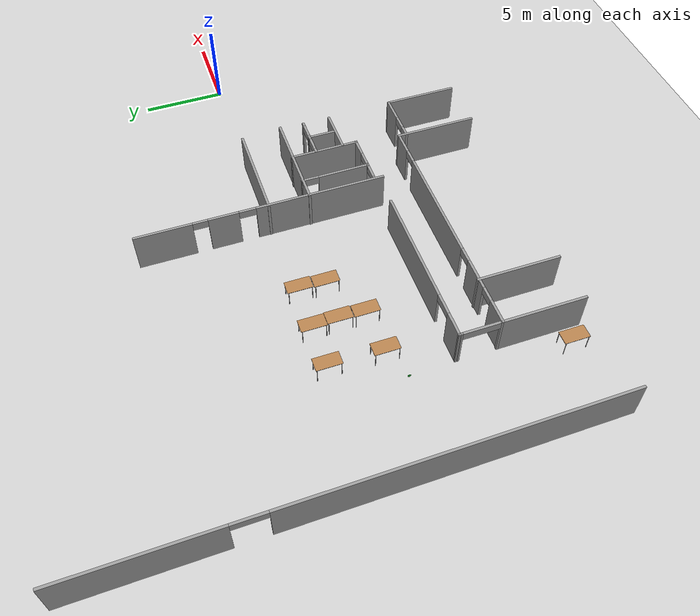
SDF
<sdf version="1.4">
 <world name="default">
  <model name="ground_plane">
   <static>1</static>
   <link name="link">
    <collision name="collision">
     <geometry><plane><normal>0 0 1</normal><size>100 100</size></plane></geometry>
    </collision>
    <visual name="visual">
     <cast_shadows>0</cast_shadows>
     <geometry><plane><normal>0 0 1</normal><size>100 100</size></plane></geometry>
     <material>
      <script><uri>file://media/materials/scripts/gazebo.material</uri><name>Gazebo/Grey</name></script>
     </material>
    </visual>
    <velocity_decay><linear>0</linear><angular>0</angular></velocity_decay>
   </link>
  </model>
  <model name="Shannon">
   <pose>-0.0406 0.68299 0 0 -0 0</pose>
   <link name="Wall_103">
    <pose>-12.639 -7.09751 0 0 -0 3.14159</pose>
    <visual name="Wall_103_Visual_0">
     <pose>-0.521613 0 1.25 0 -0 0</pose>
     <geometry><box><size>0.206775 0.15 2.5</size></box></geometry>
     <material>
      <script><uri>file://media/materials/scripts/gazebo.material</uri><name>Gazebo/Grey</name></script>
      <ambient>1 1 1 1</ambient>
     </material>
    </visual>
    <collision name="Wall_103_Collision_0">
     <geometry><box><size>0.206775 0.15 2.5</size></box></geometry>
     <pose>-0.521613 0 1.25 0 -0 0</pose>
    </collision>
    <visual name="Wall_103_Visual_1">
     <pose>0.553387 0 1.25 0 -0 0</pose>
     <geometry><box><size>0.143225 0.15 2.5</size></box></geometry>
     <material>
      <script><uri>file://media/materials/scripts/gazebo.material</uri><name>Gazebo/Grey</name></script>
      <ambient>1 1 1 1</ambient>
     </material>
    </visual>
    <collision name="Wall_103_Collision_1">
     <geometry><box><size>0.143225 0.15 2.5</size></box></geometry>
     <pose>0.553387 0 1.25 0 -0 0</pose>
    </collision>
    <visual name="Wall_103_Visual_2">
     <pose>0.031775 0 2.25 0 -0 0</pose>
     <geometry><box><size>0.9 0.15 0.5</size></box></geometry>
     <material>
      <script><uri>file://media/materials/scripts/gazebo.material</uri><name>Gazebo/Grey</name></script>
      <ambient>1 1 1 1</ambient>
     </material>
    </visual>
    <collision name="Wall_103_Collision_2">
     <geometry><box><size>0.9 0.15 0.5</size></box></geometry>
     <pose>0.031775 0 2.25 0 -0 0</pose>
    </collision>
    <velocity_decay><linear>0</linear><angular>0</angular></velocity_decay>
   </link>
   <link name="Wall_115">
    <pose>-25.1881 -8.57974 0 0 -0 1.57264</pose>
    <visual name="Wall_115_Visual_0">
     <pose>-1.20863 0 1.25 0 -0 0</pose>
     <geometry><box><size>0.183947 0.15 2.5</size></box></geometry>
     <material>
      <script><uri>file://media/materials/scripts/gazebo.material</uri><name>Gazebo/Grey</name></script>
      <ambient>1 1 1 1</ambient>
     </material>
    </visual>
    <collision name="Wall_115_Collision_0">
     <geometry><box><size>0.183947 0.15 2.5</size></box></geometry>
     <pose>-1.20863 0 1.25 0 -0 0</pose>
    </collision>
    <visual name="Wall_115_Visual_1">
     <pose>1.16989 0 1.25 0 -0 0</pose>
     <geometry><box><size>0.261435 0.15 2.5</size></box></geometry>
     <material>
      <script><uri>file://media/materials/scripts/gazebo.material</uri><name>Gazebo/Grey</name></script>
      <ambient>1 1 1 1</ambient>
     </material>
    </visual>
    <collision name="Wall_115_Collision_1">
     <geometry><box><size>0.261435 0.15 2.5</size></box></geometry>
     <pose>1.16989 0 1.25 0 -0 0</pose>
    </collision>
    <visual name="Wall_115_Visual_2">
     <pose>-0.038744 0 2.25 0 -0 0</pose>
     <geometry><box><size>2.15582 0.15 0.5</size></box></geometry>
     <material>
      <script><uri>file://media/materials/scripts/gazebo.material</uri><name>Gazebo/Grey</name></script>
      <ambient>1 1 1 1</ambient>
     </material>
    </visual>
    <collision name="Wall_115_Collision_2">
     <geometry><box><size>2.15582 0.15 0.5</size></box></geometry>
     <pose>-0.038744 0 2.25 0 -0 0</pose>
    </collision>
    <velocity_decay><linear>0</linear><angular>0</angular></velocity_decay>
   </link>
   <link name="Wall_14">
    <pose>-31.0675 -0.031809 0 0 -0 1.57646</pose>
    <visual name="Wall_14_Visual_0">
     <pose>-5.13073 0 1.25 0 -0 0</pose>
     <geometry><box><size>19.1731 0.15 2.5</size></box></geometry>
     <material>
      <script><uri>file://media/materials/scripts/gazebo.material</uri><name>Gazebo/Grey</name></script>
      <ambient>1 1 1 1</ambient>
     </material>
    </visual>
    <collision name="Wall_14_Collision_0">
     <geometry><box><size>19.1731 0.15 2.5</size></box></geometry>
     <pose>-5.13073 0 1.25 0 -0 0</pose>
    </collision>
    <visual name="Wall_14_Visual_1">
     <pose>10.5202 0 1.25 0 -0 0</pose>
     <geometry><box><size>8.3942 0.15 2.5</size></box></geometry>
     <material>
      <script><uri>file://media/materials/scripts/gazebo.material</uri><name>Gazebo/Grey</name></script>
      <ambient>1 1 1 1</ambient>
     </material>
    </visual>
    <collision name="Wall_14_Collision_1">
     <geometry><box><size>8.3942 0.15 2.5</size></box></geometry>
     <pose>10.5202 0 1.25 0 -0 0</pose>
    </collision>
    <visual name="Wall_14_Visual_2">
     <pose>5.38944 0 2.25 0 -0 0</pose>
     <geometry><box><size>1.86726 0.15 0.5</size></box></geometry>
     <material>
      <script><uri>file://media/materials/scripts/gazebo.material</uri><name>Gazebo/Grey</name></script>
      <ambient>1 1 1 1</ambient>
     </material>
    </visual>
    <collision name="Wall_14_Collision_2">
     <geometry><box><size>1.86726 0.15 0.5</size></box></geometry>
     <pose>5.38944 0 2.25 0 -0 0</pose>
    </collision>
    <velocity_decay><linear>0</linear><angular>0</angular></velocity_decay>
   </link>
   <link name="Wall_18">
    <pose>-20.2653 -7.35414 0 0 -0 3.14159</pose>
    <visual name="Wall_18_Visual_0">
     <pose>-1.3866 0 1.25 0 -0 0</pose>
     <geometry><box><size>7.2268 0.15 2.5</size></box></geometry>
     <material>
      <script><uri>file://media/materials/scripts/gazebo.material</uri><name>Gazebo/Grey</name></script>
      <ambient>1 1 1 1</ambient>
     </material>
    </visual>
    <collision name="Wall_18_Collision_0">
     <geometry><box><size>7.2268 0.15 2.5</size></box></geometry>
     <pose>-1.3866 0 1.25 0 -0 0</pose>
    </collision>
    <visual name="Wall_18_Visual_1">
     <pose>4.24845 0 1.25 0 -0 0</pose>
     <geometry><box><size>1.50311 0.15 2.5</size></box></geometry>
     <material>
      <script><uri>file://media/materials/scripts/gazebo.material</uri><name>Gazebo/Grey</name></script>
      <ambient>1 1 1 1</ambient>
     </material>
    </visual>
    <collision name="Wall_18_Collision_1">
     <geometry><box><size>1.50311 0.15 2.5</size></box></geometry>
     <pose>4.24845 0 1.25 0 -0 0</pose>
    </collision>
    <visual name="Wall_18_Visual_2">
     <pose>2.86185 0 2.25 0 -0 0</pose>
     <geometry><box><size>1.27009 0.15 0.5</size></box></geometry>
     <material>
      <script><uri>file://media/materials/scripts/gazebo.material</uri><name>Gazebo/Grey</name></script>
      <ambient>1 1 1 1</ambient>
     </material>
    </visual>
    <collision name="Wall_18_Collision_2">
     <geometry><box><size>1.27009 0.15 0.5</size></box></geometry>
     <pose>2.86185 0 2.25 0 -0 0</pose>
    </collision>
    <velocity_decay><linear>0</linear><angular>0</angular></velocity_decay>
   </link>
   <link name="Wall_22">
    <collision name="Wall_22_Collision">
     <geometry><box><size>5 0.15 2.5</size></box></geometry>
     <pose>0 0 1.25 0 -0 0</pose>
    </collision>
    <visual name="Wall_22_Visual">
     <pose>0 0 1.25 0 -0 0</pose>
     <geometry><box><size>5 0.15 2.5</size></box></geometry>
     <material>
      <script><uri>file://media/materials/scripts/gazebo.material</uri><name>Gazebo/Grey</name></script>
      <ambient>1 1 1 1</ambient>
     </material>
    </visual>
    <pose>-25.1858 -12.2303 0 0 -0 1.5708</pose>
    <velocity_decay><linear>0</linear><angular>0</angular></velocity_decay>
   </link>
   <link name="Wall_23">
    <pose>-17.7608 -9.80534 0 0 -0 0</pose>
    <visual name="Wall_23_Visual_0">
     <pose>-6.73914 0 1.25 0 -0 0</pose>
     <geometry><box><size>1.52171 0.15 2.5</size></box></geometry>
     <material>
      <script><uri>file://media/materials/scripts/gazebo.material</uri><name>Gazebo/Grey</name></script>
      <ambient>1 1 1 1</ambient>
     </material>
    </visual>
    <collision name="Wall_23_Collision_0">
     <geometry><box><size>1.52171 0.15 2.5</size></box></geometry>
     <pose>-6.73914 0 1.25 0 -0 0</pose>
    </collision>
    <visual name="Wall_23_Visual_1">
     <pose>-4.09419 0 1.25 0 -0 0</pose>
     <geometry><box><size>1.96819 0.15 2.5</size></box></geometry>
     <material>
      <script><uri>file://media/materials/scripts/gazebo.material</uri><name>Gazebo/Grey</name></script>
      <ambient>1 1 1 1</ambient>
     </material>
    </visual>
    <collision name="Wall_23_Collision_1">
     <geometry><box><size>1.96819 0.15 2.5</size></box></geometry>
     <pose>-4.09419 0 1.25 0 -0 0</pose>
    </collision>
    <visual name="Wall_23_Visual_2">
     <pose>1.43402 0 1.25 0 -0 0</pose>
     <geometry><box><size>7.28824 0.15 2.5</size></box></geometry>
     <material>
      <script><uri>file://media/materials/scripts/gazebo.material</uri><name>Gazebo/Grey</name></script>
      <ambient>1 1 1 1</ambient>
     </material>
    </visual>
    <collision name="Wall_23_Collision_2">
     <geometry><box><size>7.28824 0.15 2.5</size></box></geometry>
     <pose>1.43402 0 1.25 0 -0 0</pose>
    </collision>
    <visual name="Wall_23_Visual_3">
     <pose>6.73907 0 1.25 0 -0 0</pose>
     <geometry><box><size>1.52186 0.15 2.5</size></box></geometry>
     <material>
      <script><uri>file://media/materials/scripts/gazebo.material</uri><name>Gazebo/Grey</name></script>
      <ambient>1 1 1 1</ambient>
     </material>
    </visual>
    <collision name="Wall_23_Collision_3">
     <geometry><box><size>1.52186 0.15 2.5</size></box></geometry>
     <pose>6.73907 0 1.25 0 -0 0</pose>
    </collision>
    <visual name="Wall_23_Visual_4">
     <pose>-5.52829 0 2.25 0 -0 0</pose>
     <geometry><box><size>0.9 0.15 0.5</size></box></geometry>
     <material>
      <script><uri>file://media/materials/scripts/gazebo.material</uri><name>Gazebo/Grey</name></script>
      <ambient>1 1 1 1</ambient>
     </material>
    </visual>
    <collision name="Wall_23_Collision_4">
     <geometry><box><size>0.9 0.15 0.5</size></box></geometry>
     <pose>-5.52829 0 2.25 0 -0 0</pose>
    </collision>
    <visual name="Wall_23_Visual_5">
     <pose>-2.6601 0 2.25 0 -0 0</pose>
     <geometry><box><size>0.9 0.15 0.5</size></box></geometry>
     <material>
      <script><uri>file://media/materials/scripts/gazebo.material</uri><name>Gazebo/Grey</name></script>
      <ambient>1 1 1 1</ambient>
     </material>
    </visual>
    <collision name="Wall_23_Collision_5">
     <geometry><box><size>0.9 0.15 0.5</size></box></geometry>
     <pose>-2.6601 0 2.25 0 -0 0</pose>
    </collision>
    <visual name="Wall_23_Visual_6">
     <pose>5.52814 0 2.25 0 -0 0</pose>
     <geometry><box><size>0.9 0.15 0.5</size></box></geometry>
     <material>
      <script><uri>file://media/materials/scripts/gazebo.material</uri><name>Gazebo/Grey</name></script>
      <ambient>1 1 1 1</ambient>
     </material>
    </visual>
    <collision name="Wall_23_Collision_6">
     <geometry><box><size>0.9 0.15 0.5</size></box></geometry>
     <pose>5.52814 0 2.25 0 -0 0</pose>
    </collision>
    <velocity_decay><linear>0</linear><angular>0</angular></velocity_decay>
   </link>
   <link name="Wall_24">
    <collision name="Wall_24_Collision">
     <geometry><box><size>5 0.15 2.5</size></box></geometry>
     <pose>0 0 1.25 0 -0 0</pose>
    </collision>
    <visual name="Wall_24_Visual">
     <pose>0 0 1.25 0 -0 0</pose>
     <geometry><box><size>5 0.15 2.5</size></box></geometry>
     <material>
      <script><uri>file://media/materials/scripts/gazebo.material</uri><name>Gazebo/Grey</name></script>
      <ambient>1 1 1 1</ambient>
     </material>
    </visual>
    <pose>-10.3358 -12.2303 0 0 -0 -1.5708</pose>
    <velocity_decay><linear>0</linear><angular>0</angular></velocity_decay>
   </link>
   <link name="Wall_26">
    <pose>-8.78595 -10.2837 0 0 -0 0</pose>
    <visual name="Wall_26_Visual_0">
     <pose>-1.2458 0 1.25 0 -0 0</pose>
     <geometry><box><size>0.7584 0.15 2.5</size></box></geometry>
     <material>
      <script><uri>file://media/materials/scripts/gazebo.material</uri><name>Gazebo/Grey</name></script>
      <ambient>1 1 1 1</ambient>
     </material>
    </visual>
    <collision name="Wall_26_Collision_0">
     <geometry><box><size>0.7584 0.15 2.5</size></box></geometry>
     <pose>-1.2458 0 1.25 0 -0 0</pose>
    </collision>
    <visual name="Wall_26_Visual_1">
     <pose>0.8292 0 1.25 0 -0 0</pose>
     <geometry><box><size>1.5916 0.15 2.5</size></box></geometry>
     <material>
      <script><uri>file://media/materials/scripts/gazebo.material</uri><name>Gazebo/Grey</name></script>
      <ambient>1 1 1 1</ambient>
     </material>
    </visual>
    <collision name="Wall_26_Collision_1">
     <geometry><box><size>1.5916 0.15 2.5</size></box></geometry>
     <pose>0.8292 0 1.25 0 -0 0</pose>
    </collision>
    <visual name="Wall_26_Visual_2">
     <pose>-0.4166 0 2.25 0 -0 0</pose>
     <geometry><box><size>0.9 0.15 0.5</size></box></geometry>
     <material>
      <script><uri>file://media/materials/scripts/gazebo.material</uri><name>Gazebo/Grey</name></script>
      <ambient>1 1 1 1</ambient>
     </material>
    </visual>
    <collision name="Wall_26_Collision_2">
     <geometry><box><size>0.9 0.15 0.5</size></box></geometry>
     <pose>-0.4166 0 2.25 0 -0 0</pose>
    </collision>
    <velocity_decay><linear>0</linear><angular>0</angular></velocity_decay>
   </link>
   <link name="Wall_27">
    <collision name="Wall_27_Collision">
     <geometry><box><size>4.5 0.15 2.5</size></box></geometry>
     <pose>0 0 1.25 0 -0 0</pose>
    </collision>
    <visual name="Wall_27_Visual">
     <pose>0 0 1.25 0 -0 0</pose>
     <geometry><box><size>4.5 0.15 2.5</size></box></geometry>
     <material>
      <script><uri>file://media/materials/scripts/gazebo.material</uri><name>Gazebo/Grey</name></script>
      <ambient>1 1 1 1</ambient>
     </material>
    </visual>
    <pose>-7.23595 -12.4587 0 0 -0 -1.5708</pose>
    <velocity_decay><linear>0</linear><angular>0</angular></velocity_decay>
   </link>
   <link name="Wall_32">
    <collision name="Wall_32_Collision">
     <geometry><box><size>5 0.15 2.5</size></box></geometry>
     <pose>0 0 1.25 0 -0 0</pose>
    </collision>
    <visual name="Wall_32_Visual">
     <pose>0 0 1.25 0 -0 0</pose>
     <geometry><box><size>5 0.15 2.5</size></box></geometry>
     <material>
      <script><uri>file://media/materials/scripts/gazebo.material</uri><name>Gazebo/Grey</name></script>
      <ambient>1 1 1 1</ambient>
     </material>
    </visual>
    <pose>-22.2482 -12.1767 0 0 -0 -1.5708</pose>
    <velocity_decay><linear>0</linear><angular>0</angular></velocity_decay>
   </link>
   <link name="Wall_45">
    <pose>-13.2967 -0.175656 0 0 -0 -1.5708</pose>
    <visual name="Wall_45_Visual_0">
     <pose>-5.79079 0 1.25 0 -0 0</pose>
     <geometry><box><size>3.41842 0.15 2.5</size></box></geometry>
     <material>
      <script><uri>file://media/materials/scripts/gazebo.material</uri><name>Gazebo/Grey</name></script>
      <ambient>1 1 1 1</ambient>
     </material>
    </visual>
    <collision name="Wall_45_Collision_0">
     <geometry><box><size>3.41842 0.15 2.5</size></box></geometry>
     <pose>-5.79079 0 1.25 0 -0 0</pose>
    </collision>
    <visual name="Wall_45_Visual_1">
     <pose>-2.27266 0 1.25 0 -0 0</pose>
     <geometry><box><size>1.81785 0.15 2.5</size></box></geometry>
     <material>
      <script><uri>file://media/materials/scripts/gazebo.material</uri><name>Gazebo/Grey</name></script>
      <ambient>1 1 1 1</ambient>
     </material>
    </visual>
    <collision name="Wall_45_Collision_1">
     <geometry><box><size>1.81785 0.15 2.5</size></box></geometry>
     <pose>-2.27266 0 1.25 0 -0 0</pose>
    </collision>
    <visual name="Wall_45_Visual_2">
     <pose>3.57596 0 1.25 0 -0 0</pose>
     <geometry><box><size>7.84808 0.15 2.5</size></box></geometry>
     <material>
      <script><uri>file://media/materials/scripts/gazebo.material</uri><name>Gazebo/Grey</name></script>
      <ambient>1 1 1 1</ambient>
     </material>
    </visual>
    <collision name="Wall_45_Collision_2">
     <geometry><box><size>7.84808 0.15 2.5</size></box></geometry>
     <pose>3.57596 0 1.25 0 -0 0</pose>
    </collision>
    <visual name="Wall_45_Visual_3">
     <pose>-3.63158 0 2.25 0 -0 0</pose>
     <geometry><box><size>0.9 0.15 0.5</size></box></geometry>
     <material>
      <script><uri>file://media/materials/scripts/gazebo.material</uri><name>Gazebo/Grey</name></script>
      <ambient>1 1 1 1</ambient>
     </material>
    </visual>
    <collision name="Wall_45_Collision_3">
     <geometry><box><size>0.9 0.15 0.5</size></box></geometry>
     <pose>-3.63158 0 2.25 0 -0 0</pose>
    </collision>
    <visual name="Wall_45_Visual_4">
     <pose>-0.855907 0 2.25 0 -0 0</pose>
     <geometry><box><size>1.01565 0.15 0.5</size></box></geometry>
     <material>
      <script><uri>file://media/materials/scripts/gazebo.material</uri><name>Gazebo/Grey</name></script>
      <ambient>1 1 1 1</ambient>
     </material>
    </visual>
    <collision name="Wall_45_Collision_4">
     <geometry><box><size>1.01565 0.15 0.5</size></box></geometry>
     <pose>-0.855907 0 2.25 0 -0 0</pose>
    </collision>
    <velocity_decay><linear>0</linear><angular>0</angular></velocity_decay>
   </link>
   <link name="Wall_53">
    <collision name="Wall_53_Collision">
     <geometry><box><size>6 0.15 2.5</size></box></geometry>
     <pose>0 0 1.25 0 -0 0</pose>
    </collision>
    <visual name="Wall_53_Visual">
     <pose>0 0 1.25 0 -0 0</pose>
     <geometry><box><size>6 0.15 2.5</size></box></geometry>
     <material>
      <script><uri>file://media/materials/scripts/gazebo.material</uri><name>Gazebo/Grey</name></script>
      <ambient>1 1 1 1</ambient>
     </material>
    </visual>
    <pose>-10.3948 -0.568801 0 0 -0 0</pose>
    <velocity_decay><linear>0</linear><angular>0</angular></velocity_decay>
   </link>
   <link name="Wall_55">
    <collision name="Wall_55_Collision">
     <geometry><box><size>6.25 0.15 2.5</size></box></geometry>
     <pose>0 0 1.25 0 -0 0</pose>
    </collision>
    <visual name="Wall_55_Visual">
     <pose>0 0 1.25 0 -0 0</pose>
     <geometry><box><size>6.25 0.15 2.5</size></box></geometry>
     <material>
      <script><uri>file://media/materials/scripts/gazebo.material</uri><name>Gazebo/Grey</name></script>
      <ambient>1 1 1 1</ambient>
     </material>
    </visual>
    <pose>-10.2929 -3.04378 0 0 -0 0</pose>
    <velocity_decay><linear>0</linear><angular>0</angular></velocity_decay>
   </link>
   <link name="Wall_57">
    <collision name="Wall_57_Collision">
     <geometry><box><size>4.25 0.15 2.5</size></box></geometry>
     <pose>0 0 1.25 0 -0 0</pose>
    </collision>
    <visual name="Wall_57_Visual">
     <pose>0 0 1.25 0 -0 0</pose>
     <geometry><box><size>4.25 0.15 2.5</size></box></geometry>
     <material>
      <script><uri>file://media/materials/scripts/gazebo.material</uri><name>Gazebo/Grey</name></script>
      <ambient>1 1 1 1</ambient>
     </material>
    </visual>
    <pose>-9.98899 -5.04751 0 0 -0 -1.5708</pose>
    <velocity_decay><linear>0</linear><angular>0</angular></velocity_decay>
   </link>
   <link name="Wall_58">
    <pose>-11.039 -7.09751 0 0 -0 3.14159</pose>
    <visual name="Wall_58_Visual_0">
     <pose>-0.54919 0 1.25 0 -0 0</pose>
     <geometry><box><size>1.15162 0.15 2.5</size></box></geometry>
     <material>
      <script><uri>file://media/materials/scripts/gazebo.material</uri><name>Gazebo/Grey</name></script>
      <ambient>1 1 1 1</ambient>
     </material>
    </visual>
    <collision name="Wall_58_Collision_0">
     <geometry><box><size>1.15162 0.15 2.5</size></box></geometry>
     <pose>-0.54919 0 1.25 0 -0 0</pose>
    </collision>
    <visual name="Wall_58_Visual_1">
     <pose>1.02581 0 1.25 0 -0 0</pose>
     <geometry><box><size>0.19838 0.15 2.5</size></box></geometry>
     <material>
      <script><uri>file://media/materials/scripts/gazebo.material</uri><name>Gazebo/Grey</name></script>
      <ambient>1 1 1 1</ambient>
     </material>
    </visual>
    <collision name="Wall_58_Collision_1">
     <geometry><box><size>0.19838 0.15 2.5</size></box></geometry>
     <pose>1.02581 0 1.25 0 -0 0</pose>
    </collision>
    <visual name="Wall_58_Visual_2">
     <pose>0.47662 0 2.25 0 -0 0</pose>
     <geometry><box><size>0.9 0.15 0.5</size></box></geometry>
     <material>
      <script><uri>file://media/materials/scripts/gazebo.material</uri><name>Gazebo/Grey</name></script>
      <ambient>1 1 1 1</ambient>
     </material>
    </visual>
    <collision name="Wall_58_Collision_2">
     <geometry><box><size>0.9 0.15 0.5</size></box></geometry>
     <pose>0.47662 0 2.25 0 -0 0</pose>
    </collision>
    <velocity_decay><linear>0</linear><angular>0</angular></velocity_decay>
   </link>
   <link name="Wall_59">
    <pose>-12.089 -5.04751 0 0 -0 1.5708</pose>
    <visual name="Wall_59_Visual_0">
     <pose>-0.540067 0 1.25 0 -0 0</pose>
     <geometry><box><size>3.16987 0.15 2.5</size></box></geometry>
     <material>
      <script><uri>file://media/materials/scripts/gazebo.material</uri><name>Gazebo/Grey</name></script>
      <ambient>1 1 1 1</ambient>
     </material>
    </visual>
    <collision name="Wall_59_Collision_0">
     <geometry><box><size>3.16987 0.15 2.5</size></box></geometry>
     <pose>-0.540067 0 1.25 0 -0 0</pose>
    </collision>
    <visual name="Wall_59_Visual_1">
     <pose>2.03493 0 1.25 0 -0 0</pose>
     <geometry><box><size>0.180134 0.15 2.5</size></box></geometry>
     <material>
      <script><uri>file://media/materials/scripts/gazebo.material</uri><name>Gazebo/Grey</name></script>
      <ambient>1 1 1 1</ambient>
     </material>
    </visual>
    <collision name="Wall_59_Collision_1">
     <geometry><box><size>0.180134 0.15 2.5</size></box></geometry>
     <pose>2.03493 0 1.25 0 -0 0</pose>
    </collision>
    <visual name="Wall_59_Visual_2">
     <pose>1.49487 0 2.25 0 -0 0</pose>
     <geometry><box><size>0.9 0.15 0.5</size></box></geometry>
     <material>
      <script><uri>file://media/materials/scripts/gazebo.material</uri><name>Gazebo/Grey</name></script>
      <ambient>1 1 1 1</ambient>
     </material>
    </visual>
    <collision name="Wall_59_Collision_2">
     <geometry><box><size>0.9 0.15 0.5</size></box></geometry>
     <pose>1.49487 0 2.25 0 -0 0</pose>
    </collision>
    <velocity_decay><linear>0</linear><angular>0</angular></velocity_decay>
   </link>
   <link name="Wall_61">
    <collision name="Wall_61_Collision">
     <geometry><box><size>2.75 0.15 2.5</size></box></geometry>
     <pose>0 0 1.25 0 -0 0</pose>
    </collision>
    <visual name="Wall_61_Visual">
     <pose>0 0 1.25 0 -0 0</pose>
     <geometry><box><size>2.75 0.15 2.5</size></box></geometry>
     <material>
      <script><uri>file://media/materials/scripts/gazebo.material</uri><name>Gazebo/Grey</name></script>
      <ambient>1 1 1 1</ambient>
     </material>
    </visual>
    <pose>-8.66586 -6.21267 0 0 -0 0</pose>
    <velocity_decay><linear>0</linear><angular>0</angular></velocity_decay>
   </link>
   <link name="Wall_63">
    <pose>-8.66586 -4.52414 0 0 -0 0</pose>
    <visual name="Wall_63_Visual_0">
     <pose>-1.21554 0 1.25 0 -0 0</pose>
     <geometry><box><size>0.318918 0.15 2.5</size></box></geometry>
     <material>
      <script><uri>file://media/materials/scripts/gazebo.material</uri><name>Gazebo/Grey</name></script>
      <ambient>1 1 1 1</ambient>
     </material>
    </visual>
    <collision name="Wall_63_Collision_0">
     <geometry><box><size>0.318918 0.15 2.5</size></box></geometry>
     <pose>-1.21554 0 1.25 0 -0 0</pose>
    </collision>
    <visual name="Wall_63_Visual_1">
     <pose>0.018445 0 1.25 0 -0 0</pose>
     <geometry><box><size>0.349053 0.15 2.5</size></box></geometry>
     <material>
      <script><uri>file://media/materials/scripts/gazebo.material</uri><name>Gazebo/Grey</name></script>
      <ambient>1 1 1 1</ambient>
     </material>
    </visual>
    <collision name="Wall_63_Collision_1">
     <geometry><box><size>0.349053 0.15 2.5</size></box></geometry>
     <pose>0.018445 0 1.25 0 -0 0</pose>
    </collision>
    <visual name="Wall_63_Visual_2">
     <pose>1.23399 0 1.25 0 -0 0</pose>
     <geometry><box><size>0.282029 0.15 2.5</size></box></geometry>
     <material>
      <script><uri>file://media/materials/scripts/gazebo.material</uri><name>Gazebo/Grey</name></script>
      <ambient>1 1 1 1</ambient>
     </material>
    </visual>
    <collision name="Wall_63_Collision_2">
     <geometry><box><size>0.282029 0.15 2.5</size></box></geometry>
     <pose>1.23399 0 1.25 0 -0 0</pose>
    </collision>
    <visual name="Wall_63_Visual_3">
     <pose>-0.606082 0 2.25 0 -0 0</pose>
     <geometry><box><size>0.9 0.15 0.5</size></box></geometry>
     <material>
      <script><uri>file://media/materials/scripts/gazebo.material</uri><name>Gazebo/Grey</name></script>
      <ambient>1 1 1 1</ambient>
     </material>
    </visual>
    <collision name="Wall_63_Collision_3">
     <geometry><box><size>0.9 0.15 0.5</size></box></geometry>
     <pose>-0.606082 0 2.25 0 -0 0</pose>
    </collision>
    <visual name="Wall_63_Visual_4">
     <pose>0.642971 0 2.25 0 -0 0</pose>
     <geometry><box><size>0.9 0.15 0.5</size></box></geometry>
     <material>
      <script><uri>file://media/materials/scripts/gazebo.material</uri><name>Gazebo/Grey</name></script>
      <ambient>1 1 1 1</ambient>
     </material>
    </visual>
    <collision name="Wall_63_Collision_4">
     <geometry><box><size>0.9 0.15 0.5</size></box></geometry>
     <pose>0.642971 0 2.25 0 -0 0</pose>
    </collision>
    <velocity_decay><linear>0</linear><angular>0</angular></velocity_decay>
   </link>
   <link name="Wall_65">
    <collision name="Wall_65_Collision">
     <geometry><box><size>1.75 0.15 2.5</size></box></geometry>
     <pose>0 0 1.25 0 -0 0</pose>
    </collision>
    <visual name="Wall_65_Visual">
     <pose>0 0 1.25 0 -0 0</pose>
     <geometry><box><size>1.75 0.15 2.5</size></box></geometry>
     <material>
      <script><uri>file://media/materials/scripts/gazebo.material</uri><name>Gazebo/Grey</name></script>
      <ambient>1 1 1 1</ambient>
     </material>
    </visual>
    <pose>-8.64741 -5.301 0 0 -0 -1.5708</pose>
    <velocity_decay><linear>0</linear><angular>0</angular></velocity_decay>
   </link>
   <static>1</static>
  </model>
  <model name="table_clone_clone_17">
   <static>1</static>
   <link name="link">
    <collision name="surface">
     <pose>0 0 1 0 -0 0</pose>
     <geometry><box><size>1.5 0.8 0.03</size></box></geometry>
    </collision>
    <visual name="visual1">
     <pose>0 0 1 0 -0 0</pose>
     <geometry><box><size>1.5 0.8 0.03</size></box></geometry>
     <material>
      <script><uri>file://media/materials/scripts/gazebo.material</uri><name>Gazebo/Wood</name></script>
     </material>
    </visual>
    <collision name="front_left_leg">
     <pose>0.68 0.38 0.5 0 -0 0</pose>
     <geometry><cylinder><radius>0.02</radius><length>1</length></cylinder></geometry>
    </collision>
    <visual name="front_left_leg">
     <pose>0.68 0.38 0.5 0 -0 0</pose>
     <geometry><cylinder><radius>0.02</radius><length>1</length></cylinder></geometry>
     <material>
      <script><uri>file://media/materials/scripts/gazebo.material</uri><name>Gazebo/Grey</name></script>
     </material>
    </visual>
    <collision name="front_right_leg">
     <pose>0.68 -0.38 0.5 0 -0 0</pose>
     <geometry><cylinder><radius>0.02</radius><length>1</length></cylinder></geometry>
    </collision>
    <visual name="front_right_leg">
     <pose>0.68 -0.38 0.5 0 -0 0</pose>
     <geometry><cylinder><radius>0.02</radius><length>1</length></cylinder></geometry>
     <material>
      <script><uri>file://media/materials/scripts/gazebo.material</uri><name>Gazebo/Grey</name></script>
     </material>
    </visual>
    <collision name="back_right_leg">
     <pose>-0.68 -0.38 0.5 0 -0 0</pose>
     <geometry><cylinder><radius>0.02</radius><length>1</length></cylinder></geometry>
    </collision>
    <visual name="back_right_leg">
     <pose>-0.68 -0.38 0.5 0 -0 0</pose>
     <geometry><cylinder><radius>0.02</radius><length>1</length></cylinder></geometry>
     <material>
      <script><uri>file://media/materials/scripts/gazebo.material</uri><name>Gazebo/Grey</name></script>
     </material>
    </visual>
    <collision name="back_left_leg">
     <pose>-0.68 0.38 0.5 0 -0 0</pose>
     <geometry><cylinder><radius>0.02</radius><length>1</length></cylinder></geometry>
    </collision>
    <visual name="back_left_leg">
     <pose>-0.68 0.38 0.5 0 -0 0</pose>
     <geometry><cylinder><radius>0.02</radius><length>1</length></cylinder></geometry>
     <material>
      <script><uri>file://media/materials/scripts/gazebo.material</uri><name>Gazebo/Grey</name></script>
     </material>
    </visual>
    <velocity_decay><linear>0</linear><angular>0</angular></velocity_decay>
   </link>
   <pose>-26.3502 -12.997 0 0 -0 1.57</pose>
  </model>
  <model name="table_clone_clone_21_clone">
   <static>1</static>
   <link name="link">
    <collision name="surface">
     <pose>0 0 1 0 -0 0</pose>
     <geometry><box><size>1.5 0.8 0.03</size></box></geometry>
    </collision>
    <visual name="visual1">
     <pose>0 0 1 0 -0 0</pose>
     <geometry><box><size>1.5 0.8 0.03</size></box></geometry>
     <material>
      <script><uri>file://media/materials/scripts/gazebo.material</uri><name>Gazebo/Wood</name></script>
     </material>
    </visual>
    <collision name="front_left_leg">
     <pose>0.68 0.38 0.5 0 -0 0</pose>
     <geometry><cylinder><radius>0.02</radius><length>1</length></cylinder></geometry>
    </collision>
    <visual name="front_left_leg">
     <pose>0.68 0.38 0.5 0 -0 0</pose>
     <geometry><cylinder><radius>0.02</radius><length>1</length></cylinder></geometry>
     <material>
      <script><uri>file://media/materials/scripts/gazebo.material</uri><name>Gazebo/Grey</name></script>
     </material>
    </visual>
    <collision name="front_right_leg">
     <pose>0.68 -0.38 0.5 0 -0 0</pose>
     <geometry><cylinder><radius>0.02</radius><length>1</length></cylinder></geometry>
    </collision>
    <visual name="front_right_leg">
     <pose>0.68 -0.38 0.5 0 -0 0</pose>
     <geometry><cylinder><radius>0.02</radius><length>1</length></cylinder></geometry>
     <material>
      <script><uri>file://media/materials/scripts/gazebo.material</uri><name>Gazebo/Grey</name></script>
     </material>
    </visual>
    <collision name="back_right_leg">
     <pose>-0.68 -0.38 0.5 0 -0 0</pose>
     <geometry><cylinder><radius>0.02</radius><length>1</length></cylinder></geometry>
    </collision>
    <visual name="back_right_leg">
     <pose>-0.68 -0.38 0.5 0 -0 0</pose>
     <geometry><cylinder><radius>0.02</radius><length>1</length></cylinder></geometry>
     <material>
      <script><uri>file://media/materials/scripts/gazebo.material</uri><name>Gazebo/Grey</name></script>
     </material>
    </visual>
    <collision name="back_left_leg">
     <pose>-0.68 0.38 0.5 0 -0 0</pose>
     <geometry><cylinder><radius>0.02</radius><length>1</length></cylinder></geometry>
    </collision>
    <visual name="back_left_leg">
     <pose>-0.68 0.38 0.5 0 -0 0</pose>
     <geometry><cylinder><radius>0.02</radius><length>1</length></cylinder></geometry>
     <material>
      <script><uri>file://media/materials/scripts/gazebo.material</uri><name>Gazebo/Grey</name></script>
     </material>
    </visual>
    <velocity_decay><linear>0</linear><angular>0</angular></velocity_decay>
   </link>
   <pose>-18.3589 -0.097311 0 0 -0 1.57</pose>
  </model>
  <model name="table_clone_clone_21_clone_0">
   <static>1</static>
   <link name="link">
    <collision name="surface">
     <pose>0 0 1 0 -0 0</pose>
     <geometry><box><size>1.5 0.8 0.03</size></box></geometry>
    </collision>
    <visual name="visual1">
     <pose>0 0 1 0 -0 0</pose>
     <geometry><box><size>1.5 0.8 0.03</size></box></geometry>
     <material>
      <script><uri>file://media/materials/scripts/gazebo.material</uri><name>Gazebo/Wood</name></script>
     </material>
    </visual>
    <collision name="front_left_leg">
     <pose>0.68 0.38 0.5 0 -0 0</pose>
     <geometry><cylinder><radius>0.02</radius><length>1</length></cylinder></geometry>
    </collision>
    <visual name="front_left_leg">
     <pose>0.68 0.38 0.5 0 -0 0</pose>
     <geometry><cylinder><radius>0.02</radius><length>1</length></cylinder></geometry>
     <material>
      <script><uri>file://media/materials/scripts/gazebo.material</uri><name>Gazebo/Grey</name></script>
     </material>
    </visual>
    <collision name="front_right_leg">
     <pose>0.68 -0.38 0.5 0 -0 0</pose>
     <geometry><cylinder><radius>0.02</radius><length>1</length></cylinder></geometry>
    </collision>
    <visual name="front_right_leg">
     <pose>0.68 -0.38 0.5 0 -0 0</pose>
     <geometry><cylinder><radius>0.02</radius><length>1</length></cylinder></geometry>
     <material>
      <script><uri>file://media/materials/scripts/gazebo.material</uri><name>Gazebo/Grey</name></script>
     </material>
    </visual>
    <collision name="back_right_leg">
     <pose>-0.68 -0.38 0.5 0 -0 0</pose>
     <geometry><cylinder><radius>0.02</radius><length>1</length></cylinder></geometry>
    </collision>
    <visual name="back_right_leg">
     <pose>-0.68 -0.38 0.5 0 -0 0</pose>
     <geometry><cylinder><radius>0.02</radius><length>1</length></cylinder></geometry>
     <material>
      <script><uri>file://media/materials/scripts/gazebo.material</uri><name>Gazebo/Grey</name></script>
     </material>
    </visual>
    <collision name="back_left_leg">
     <pose>-0.68 0.38 0.5 0 -0 0</pose>
     <geometry><cylinder><radius>0.02</radius><length>1</length></cylinder></geometry>
    </collision>
    <visual name="back_left_leg">
     <pose>-0.68 0.38 0.5 0 -0 0</pose>
     <geometry><cylinder><radius>0.02</radius><length>1</length></cylinder></geometry>
     <material>
      <script><uri>file://media/materials/scripts/gazebo.material</uri><name>Gazebo/Grey</name></script>
     </material>
    </visual>
    <velocity_decay><linear>0</linear><angular>0</angular></velocity_decay>
   </link>
   <pose>-18.4195 -1.63867 0 0 -0 1.57</pose>
  </model>
  <model name="table_clone_clone_21_clone_3">
   <static>1</static>
   <link name="link">
    <collision name="surface">
     <pose>0 0 1 0 -0 0</pose>
     <geometry><box><size>1.5 0.8 0.03</size></box></geometry>
    </collision>
    <visual name="visual1">
     <pose>0 0 1 0 -0 0</pose>
     <geometry><box><size>1.5 0.8 0.03</size></box></geometry>
     <material>
      <script><uri>file://media/materials/scripts/gazebo.material</uri><name>Gazebo/Wood</name></script>
     </material>
    </visual>
    <collision name="front_left_leg">
     <pose>0.68 0.38 0.5 0 -0 0</pose>
     <geometry><cylinder><radius>0.02</radius><length>1</length></cylinder></geometry>
    </collision>
    <visual name="front_left_leg">
     <pose>0.68 0.38 0.5 0 -0 0</pose>
     <geometry><cylinder><radius>0.02</radius><length>1</length></cylinder></geometry>
     <material>
      <script><uri>file://media/materials/scripts/gazebo.material</uri><name>Gazebo/Grey</name></script>
     </material>
    </visual>
    <collision name="front_right_leg">
     <pose>0.68 -0.38 0.5 0 -0 0</pose>
     <geometry><cylinder><radius>0.02</radius><length>1</length></cylinder></geometry>
    </collision>
    <visual name="front_right_leg">
     <pose>0.68 -0.38 0.5 0 -0 0</pose>
     <geometry><cylinder><radius>0.02</radius><length>1</length></cylinder></geometry>
     <material>
      <script><uri>file://media/materials/scripts/gazebo.material</uri><name>Gazebo/Grey</name></script>
     </material>
    </visual>
    <collision name="back_right_leg">
     <pose>-0.68 -0.38 0.5 0 -0 0</pose>
     <geometry><cylinder><radius>0.02</radius><length>1</length></cylinder></geometry>
    </collision>
    <visual name="back_right_leg">
     <pose>-0.68 -0.38 0.5 0 -0 0</pose>
     <geometry><cylinder><radius>0.02</radius><length>1</length></cylinder></geometry>
     <material>
      <script><uri>file://media/materials/scripts/gazebo.material</uri><name>Gazebo/Grey</name></script>
     </material>
    </visual>
    <collision name="back_left_leg">
     <pose>-0.68 0.38 0.5 0 -0 0</pose>
     <geometry><cylinder><radius>0.02</radius><length>1</length></cylinder></geometry>
    </collision>
    <visual name="back_left_leg">
     <pose>-0.68 0.38 0.5 0 -0 0</pose>
     <geometry><cylinder><radius>0.02</radius><length>1</length></cylinder></geometry>
     <material>
      <script><uri>file://media/materials/scripts/gazebo.material</uri><name>Gazebo/Grey</name></script>
     </material>
    </visual>
    <velocity_decay><linear>0</linear><angular>0</angular></velocity_decay>
   </link>
   <pose>-21.0641 -0.039935 0 0 -0 1.57</pose>
  </model>
  <model name="table_clone_clone_21_clone_4">
   <static>1</static>
   <link name="link">
    <collision name="surface">
     <pose>0 0 1 0 -0 0</pose>
     <geometry><box><size>1.5 0.8 0.03</size></box></geometry>
    </collision>
    <visual name="visual1">
     <pose>0 0 1 0 -0 0</pose>
     <geometry><box><size>1.5 0.8 0.03</size></box></geometry>
     <material>
      <script><uri>file://media/materials/scripts/gazebo.material</uri><name>Gazebo/Wood</name></script>
     </material>
    </visual>
    <collision name="front_left_leg">
     <pose>0.68 0.38 0.5 0 -0 0</pose>
     <geometry><cylinder><radius>0.02</radius><length>1</length></cylinder></geometry>
    </collision>
    <visual name="front_left_leg">
     <pose>0.68 0.38 0.5 0 -0 0</pose>
     <geometry><cylinder><radius>0.02</radius><length>1</length></cylinder></geometry>
     <material>
      <script><uri>file://media/materials/scripts/gazebo.material</uri><name>Gazebo/Grey</name></script>
     </material>
    </visual>
    <collision name="front_right_leg">
     <pose>0.68 -0.38 0.5 0 -0 0</pose>
     <geometry><cylinder><radius>0.02</radius><length>1</length></cylinder></geometry>
    </collision>
    <visual name="front_right_leg">
     <pose>0.68 -0.38 0.5 0 -0 0</pose>
     <geometry><cylinder><radius>0.02</radius><length>1</length></cylinder></geometry>
     <material>
      <script><uri>file://media/materials/scripts/gazebo.material</uri><name>Gazebo/Grey</name></script>
     </material>
    </visual>
    <collision name="back_right_leg">
     <pose>-0.68 -0.38 0.5 0 -0 0</pose>
     <geometry><cylinder><radius>0.02</radius><length>1</length></cylinder></geometry>
    </collision>
    <visual name="back_right_leg">
     <pose>-0.68 -0.38 0.5 0 -0 0</pose>
     <geometry><cylinder><radius>0.02</radius><length>1</length></cylinder></geometry>
     <material>
      <script><uri>file://media/materials/scripts/gazebo.material</uri><name>Gazebo/Grey</name></script>
     </material>
    </visual>
    <collision name="back_left_leg">
     <pose>-0.68 0.38 0.5 0 -0 0</pose>
     <geometry><cylinder><radius>0.02</radius><length>1</length></cylinder></geometry>
    </collision>
    <visual name="back_left_leg">
     <pose>-0.68 0.38 0.5 0 -0 0</pose>
     <geometry><cylinder><radius>0.02</radius><length>1</length></cylinder></geometry>
     <material>
      <script><uri>file://media/materials/scripts/gazebo.material</uri><name>Gazebo/Grey</name></script>
     </material>
    </visual>
    <velocity_decay><linear>0</linear><angular>0</angular></velocity_decay>
   </link>
   <pose>-23.6278 -0.040492 0 0 -0 1.57</pose>
  </model>
  <model name="table_clone_clone_21_clone_6">
   <static>1</static>
   <link name="link">
    <collision name="surface">
     <pose>0 0 1 0 -0 0</pose>
     <geometry><box><size>1.5 0.8 0.03</size></box></geometry>
    </collision>
    <visual name="visual1">
     <pose>0 0 1 0 -0 0</pose>
     <geometry><box><size>1.5 0.8 0.03</size></box></geometry>
     <material>
      <script><uri>file://media/materials/scripts/gazebo.material</uri><name>Gazebo/Wood</name></script>
     </material>
    </visual>
    <collision name="front_left_leg">
     <pose>0.68 0.38 0.5 0 -0 0</pose>
     <geometry><cylinder><radius>0.02</radius><length>1</length></cylinder></geometry>
    </collision>
    <visual name="front_left_leg">
     <pose>0.68 0.38 0.5 0 -0 0</pose>
     <geometry><cylinder><radius>0.02</radius><length>1</length></cylinder></geometry>
     <material>
      <script><uri>file://media/materials/scripts/gazebo.material</uri><name>Gazebo/Grey</name></script>
     </material>
    </visual>
    <collision name="front_right_leg">
     <pose>0.68 -0.38 0.5 0 -0 0</pose>
     <geometry><cylinder><radius>0.02</radius><length>1</length></cylinder></geometry>
    </collision>
    <visual name="front_right_leg">
     <pose>0.68 -0.38 0.5 0 -0 0</pose>
     <geometry><cylinder><radius>0.02</radius><length>1</length></cylinder></geometry>
     <material>
      <script><uri>file://media/materials/scripts/gazebo.material</uri><name>Gazebo/Grey</name></script>
     </material>
    </visual>
    <collision name="back_right_leg">
     <pose>-0.68 -0.38 0.5 0 -0 0</pose>
     <geometry><cylinder><radius>0.02</radius><length>1</length></cylinder></geometry>
    </collision>
    <visual name="back_right_leg">
     <pose>-0.68 -0.38 0.5 0 -0 0</pose>
     <geometry><cylinder><radius>0.02</radius><length>1</length></cylinder></geometry>
     <material>
      <script><uri>file://media/materials/scripts/gazebo.material</uri><name>Gazebo/Grey</name></script>
     </material>
    </visual>
    <collision name="back_left_leg">
     <pose>-0.68 0.38 0.5 0 -0 0</pose>
     <geometry><cylinder><radius>0.02</radius><length>1</length></cylinder></geometry>
    </collision>
    <visual name="back_left_leg">
     <pose>-0.68 0.38 0.5 0 -0 0</pose>
     <geometry><cylinder><radius>0.02</radius><length>1</length></cylinder></geometry>
     <material>
      <script><uri>file://media/materials/scripts/gazebo.material</uri><name>Gazebo/Grey</name></script>
     </material>
    </visual>
    <velocity_decay><linear>0</linear><angular>0</angular></velocity_decay>
   </link>
   <pose>-23.7366 -3.23274 0 0 -0 1.57</pose>
  </model>
  <model name="table_clone_clone_21_clone_9">
   <static>1</static>
   <link name="link">
    <collision name="surface">
     <pose>0 0 1 0 -0 0</pose>
     <geometry><box><size>1.5 0.8 0.03</size></box></geometry>
    </collision>
    <visual name="visual1">
     <pose>0 0 1 0 -0 0</pose>
     <geometry><box><size>1.5 0.8 0.03</size></box></geometry>
     <material>
      <script><uri>file://media/materials/scripts/gazebo.material</uri><name>Gazebo/Wood</name></script>
     </material>
    </visual>
    <collision name="front_left_leg">
     <pose>0.68 0.38 0.5 0 -0 0</pose>
     <geometry><cylinder><radius>0.02</radius><length>1</length></cylinder></geometry>
    </collision>
    <visual name="front_left_leg">
     <pose>0.68 0.38 0.5 0 -0 0</pose>
     <geometry><cylinder><radius>0.02</radius><length>1</length></cylinder></geometry>
     <material>
      <script><uri>file://media/materials/scripts/gazebo.material</uri><name>Gazebo/Grey</name></script>
     </material>
    </visual>
    <collision name="front_right_leg">
     <pose>0.68 -0.38 0.5 0 -0 0</pose>
     <geometry><cylinder><radius>0.02</radius><length>1</length></cylinder></geometry>
    </collision>
    <visual name="front_right_leg">
     <pose>0.68 -0.38 0.5 0 -0 0</pose>
     <geometry><cylinder><radius>0.02</radius><length>1</length></cylinder></geometry>
     <material>
      <script><uri>file://media/materials/scripts/gazebo.material</uri><name>Gazebo/Grey</name></script>
     </material>
    </visual>
    <collision name="back_right_leg">
     <pose>-0.68 -0.38 0.5 0 -0 0</pose>
     <geometry><cylinder><radius>0.02</radius><length>1</length></cylinder></geometry>
    </collision>
    <visual name="back_right_leg">
     <pose>-0.68 -0.38 0.5 0 -0 0</pose>
     <geometry><cylinder><radius>0.02</radius><length>1</length></cylinder></geometry>
     <material>
      <script><uri>file://media/materials/scripts/gazebo.material</uri><name>Gazebo/Grey</name></script>
     </material>
    </visual>
    <collision name="back_left_leg">
     <pose>-0.68 0.38 0.5 0 -0 0</pose>
     <geometry><cylinder><radius>0.02</radius><length>1</length></cylinder></geometry>
    </collision>
    <visual name="back_left_leg">
     <pose>-0.68 0.38 0.5 0 -0 0</pose>
     <geometry><cylinder><radius>0.02</radius><length>1</length></cylinder></geometry>
     <material>
      <script><uri>file://media/materials/scripts/gazebo.material</uri><name>Gazebo/Grey</name></script>
     </material>
    </visual>
    <velocity_decay><linear>0</linear><angular>0</angular></velocity_decay>
   </link>
   <pose>-21.0694 -3.08151 0 0 -0 1.57</pose>
  </model>
  <model name="table_clone_clone_21_clone_10">
   <static>1</static>
   <link name="link">
    <collision name="surface">
     <pose>0 0 1 0 -0 0</pose>
     <geometry><box><size>1.5 0.8 0.03</size></box></geometry>
    </collision>
    <visual name="visual1">
     <pose>0 0 1 0 -0 0</pose>
     <geometry><box><size>1.5 0.8 0.03</size></box></geometry>
     <material>
      <script><uri>file://media/materials/scripts/gazebo.material</uri><name>Gazebo/Wood</name></script>
     </material>
    </visual>
    <collision name="front_left_leg">
     <pose>0.68 0.38 0.5 0 -0 0</pose>
     <geometry><cylinder><radius>0.02</radius><length>1</length></cylinder></geometry>
    </collision>
    <visual name="front_left_leg">
     <pose>0.68 0.38 0.5 0 -0 0</pose>
     <geometry><cylinder><radius>0.02</radius><length>1</length></cylinder></geometry>
     <material>
      <script><uri>file://media/materials/scripts/gazebo.material</uri><name>Gazebo/Grey</name></script>
     </material>
    </visual>
    <collision name="front_right_leg">
     <pose>0.68 -0.38 0.5 0 -0 0</pose>
     <geometry><cylinder><radius>0.02</radius><length>1</length></cylinder></geometry>
    </collision>
    <visual name="front_right_leg">
     <pose>0.68 -0.38 0.5 0 -0 0</pose>
     <geometry><cylinder><radius>0.02</radius><length>1</length></cylinder></geometry>
     <material>
      <script><uri>file://media/materials/scripts/gazebo.material</uri><name>Gazebo/Grey</name></script>
     </material>
    </visual>
    <collision name="back_right_leg">
     <pose>-0.68 -0.38 0.5 0 -0 0</pose>
     <geometry><cylinder><radius>0.02</radius><length>1</length></cylinder></geometry>
    </collision>
    <visual name="back_right_leg">
     <pose>-0.68 -0.38 0.5 0 -0 0</pose>
     <geometry><cylinder><radius>0.02</radius><length>1</length></cylinder></geometry>
     <material>
      <script><uri>file://media/materials/scripts/gazebo.material</uri><name>Gazebo/Grey</name></script>
     </material>
    </visual>
    <collision name="back_left_leg">
     <pose>-0.68 0.38 0.5 0 -0 0</pose>
     <geometry><cylinder><radius>0.02</radius><length>1</length></cylinder></geometry>
    </collision>
    <visual name="back_left_leg">
     <pose>-0.68 0.38 0.5 0 -0 0</pose>
     <geometry><cylinder><radius>0.02</radius><length>1</length></cylinder></geometry>
     <material>
      <script><uri>file://media/materials/scripts/gazebo.material</uri><name>Gazebo/Grey</name></script>
     </material>
    </visual>
    <velocity_decay><linear>0</linear><angular>0</angular></velocity_decay>
   </link>
   <pose>-21.0246 -1.54643 0 0 -0 1.57</pose>
  </model>
  <model name="unit_cylinder_clone">
   <pose>-25.3506 -4.00235 0.100002 1.5713 0.035911 1.57073</pose>
   <link name="unit_cylinder::unit_cylinder::unit_cylinder::unit_cylinder::unit_cylinder::unit_cylinder::link">
    <inertial>
     <mass>1</mass>
     <inertia><ixx>0.145833</ixx><ixy>0</ixy><ixz>0</ixz><iyy>0.145833</iyy><iyz>0</iyz><izz>0.125</izz></inertia>
    </inertial>
    <collision name="collision">
     <geometry><cylinder><radius>0.1</radius><length>0.01</length></cylinder></geometry>
    </collision>
    <visual name="visual">
     <geometry><cylinder><radius>0.1</radius><length>0.01</length></cylinder></geometry>
     <material>
      <script><name>Gazebo/Green</name><uri>file://media/materials/scripts/gazebo.material</uri></script>
     </material>
    </visual>
    <velocity_decay><linear>0</linear><angular>0</angular></velocity_decay>
   </link>
   <static>0</static>
  </model>
 </world>
</sdf>
